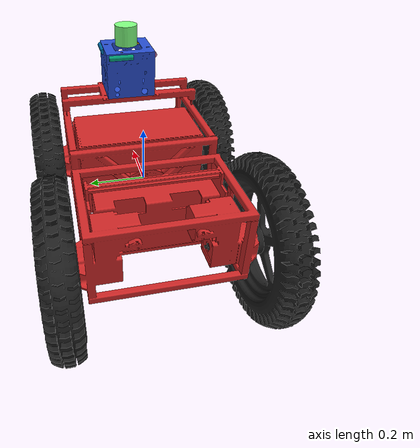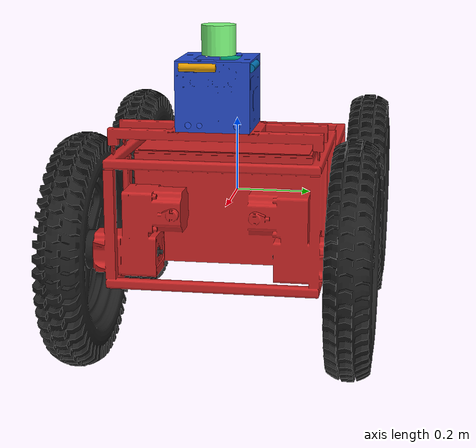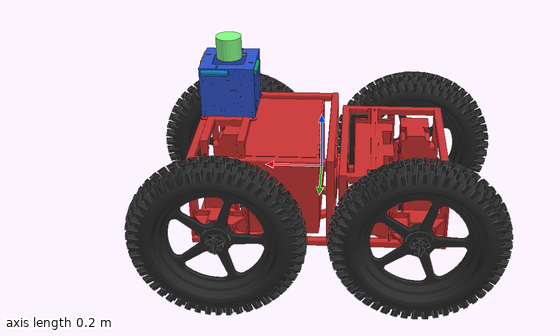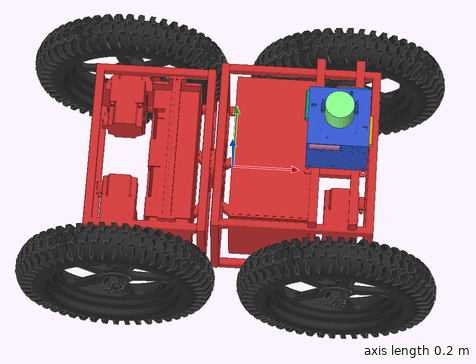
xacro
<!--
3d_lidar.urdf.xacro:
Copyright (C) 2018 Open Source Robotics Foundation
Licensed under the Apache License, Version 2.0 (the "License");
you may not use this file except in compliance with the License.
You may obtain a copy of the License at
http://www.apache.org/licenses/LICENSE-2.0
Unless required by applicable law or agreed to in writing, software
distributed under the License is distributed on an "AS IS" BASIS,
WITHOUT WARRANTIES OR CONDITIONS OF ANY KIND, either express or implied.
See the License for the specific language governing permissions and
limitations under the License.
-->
<?xml version="1.0"?>
<robot name="ground_robot_sim" xmlns:xacro="http://ros.org/wiki/xacro">

  <xacro:property name="mesh_path" value="package://ground_robot_sim/meshes" />
  <xacro:property name="wheel_length" value="0.1125" />
  <xacro:property name="wheel_radius" value="0.31" />
  <xacro:property name="M_PI" value="3.14159"/>
  <xacro:property name="joint_damping" value="10" />
  <xacro:property name="joint_friction" value="0.1" />
  <xacro:property name="wheel_ground_contact_stiffness" value="10000000.0" />
  <xacro:property name="wheel_ground_contact_damping" value="0.0001" />
  <xacro:property name="namespace" value="" />

  <xacro:include filename="$(find ground_robot_sim)/urdf/3d_lidar.urdf.xacro" />
  <xacro:include filename="$(find ground_robot_sim)/urdf/rgbd_camera.urdf.xacro" />

  <xacro:macro name="geometry_mesh" params="filename">
  	<geometry>
	  <mesh filename="${mesh_path}/${filename}" />
    </geometry>
  </xacro:macro>

  <xacro:macro name="default_collision" params="filename">
  	<collision>
      <origin xyz="0 0 0" rpy="0 0 0" />
      <xacro:geometry_mesh filename="${filename}" />
    </collision>
  </xacro:macro>

  <xacro:macro name="wheel_collision" params="filename">
  	<collision>
		<origin xyz="0 0 0" rpy="0 ${M_PI/2} 0" />
		<geometry>
      		<cylinder length="${wheel_length}" radius="${wheel_radius}" />
		</geometry>
  	</collision>
  </xacro:macro>

  <xacro:macro name="material_color" params="rgba">
    <material name="">
      <color rgba="${rgba}" />
    </material>
  </xacro:macro>

  <xacro:macro name="gazebo_material" params="ref color">
    <gazebo reference="${ref}">
      <material>Gazebo/${color}</material>
    </gazebo>
  </xacro:macro>

  <xacro:macro name="wheel_ground_contact_parameters" params="wheel_link">
  	<gazebo reference="${wheel_link}">
		<kp value="${wheel_ground_contact_stiffness}" />
		<kd value="${wheel_ground_contact_damping}" />
		<collision>
		  <surface>
		    <friction>
		      <ode>
		        <mu>1.0</mu>
		        <mu2>1.0</mu2>
		        <fdir1>0 0 1</fdir1>
		        <slip1>1e-3</slip1>
		        <slip2>0</slip2>
		       	<max_vel>10</max_vel>
		        <min_depth>0.1</min_depth>
		      </ode>
		    </friction>
		  </surface>
		</collision>
    </gazebo>
  </xacro:macro>

  <link name="base_link">
    <inertial>
      <origin
        xyz="9.37239544340711E-05 0.0335727432650143 0.0208381968306213"
        rpy="0 0 0" />
      <mass
        value="60.0100748375843" />
      <inertia
        ixx="4.4310240660959"
        ixy="0.00177949851092048"
        ixz="-0.00175257857601579"
        iyy="2.42782927668064"
        iyz="-0.39242059748848"
        izz="5.54496680440692" />
    </inertial>
    <visual>
      <origin xyz="0 0 0" rpy="0 0 -1.57" />
      <xacro:geometry_mesh filename="base_link.STL" />
    </visual>
    <xacro:default_collision filename="base_link.STL" />
  </link>

  <link
    name="Rear_Rocker_Link">
    <inertial>
      <origin
        xyz="-0.191018012185159 -0.00640313505536938 -1.26380909281965E-07"
        rpy="0 0 0" />
      <mass
        value="23.1125622247703" />
      <inertia
        ixx="0.848992292337387"
        ixy="0.00301841593778525"
        ixz="5.2178752701003E-06"
        iyy="1.03049493804274"
        iyz="1.21709858827846E-07"
        izz="0.436789924755462" />
    </inertial>
    <visual>
      <origin xyz="0 0 0" rpy="0 0 0" />
      <xacro:geometry_mesh filename="Rear_Rocker_Link.STL" />
    </visual>
    <xacro:default_collision filename="Rear_Rocker_Link.STL" />
  </link>
  <joint
    name="Center Pivot"
    type="continuous">
    <origin
      xyz="-0.047625 0 -0.0254"
      rpy="1.5708 6.123E-17 0" />
    <parent
      link="base_link" />
    <child
      link="Rear_Rocker_Link" />
    <axis
      xyz="-1 0 0" />
  </joint>

  <link name="sensor_payload_link">
    <inertial>
      <origin
        xyz="4.32900927266888E-05 0.072569130795944 -0.0921360274406024"
        rpy="0 0 0" />
      <mass
        value="0.41481449791151" />
      <inertia
        ixx="0.00208947621670912"
        ixy="-3.66162905680016E-07"
        ixz="-3.19229505004623E-07"
        iyy="0.00056264622462507"
        iyz="-2.41791699054797E-07"
        izz="0.00152683275984506" />
    </inertial>
    <visual>
      <origin xyz="0 0 0" rpy="0 0 0" />
      <xacro:geometry_mesh filename="sensor_payload_link.STL" />
    </visual>
    <xacro:default_collision filename="sensor_payload_link.STL" />
  </link>

  <joint name="sensor_payload_base_joint" type="fixed">
    <origin
      xyz="0.31054 -0.0903 0.23288"
      rpy="1.5708 6.123E-17 0" />
    <parent link="base_link" />
    <child link="sensor_payload_link" />
    <axis xyz="0 0 0" />
  </joint>

  <link name="left_rear_wheel_link">
    <inertial>
      <origin
        xyz="0.00712428256505299 -1.60381190311698E-05 3.5365049083913E-06"
        rpy="0 0 0" />
      <mass
        value="11.5397743446227" />
      <inertia
        ixx="0.127931752943703"
        ixy="6.41777184216616E-06"
        ixz="2.4027118765741E-06"
        iyy="0.0695644678223955"
        iyz="1.35438803038459E-09"
        izz="0.069564341275897" />
    </inertial>
    <visual>
      <origin xyz="0 0 0" rpy="0 0 0" />
      <xacro:geometry_mesh filename="left_rear_wheel_link.STL" />
    </visual>
    <xacro:wheel_collision filename="left_rear_wheel_link.STL" />
  </link>

  <joint name="left_rear_wheel" type="continuous">
    <origin
      xyz="-0.287 -0.058 -0.343"
      rpy="2.342 -1.571 2.356" />
    <parent link="Rear_Rocker_Link" />
    <child link="left_rear_wheel_link" />
    <axis xyz="-1 0 0" />
    <dynamics damping="${joint_damping}" friction="${joint_friction}"/>
  </joint>

  <link name="right_rear_wheel_link">
    <inertial>
      <origin
        xyz="0.0071242825654097 -1.60381190438819E-05 3.53650495498598E-06"
        rpy="0 0 0" />
      <mass
        value="11.5397743444433" />
      <inertia
        ixx="0.127931752943703"
        ixy="6.41777184772096E-06"
        ixz="2.40271185774561E-06"
        iyy="0.0695644678228964"
        iyz="1.35438804973759E-09"
        izz="0.0695643412763979" />
    </inertial>
    <visual>
      <origin xyz="0 0 0" rpy="0 0 0" />
      <xacro:geometry_mesh filename="right_rear_wheel_link.STL" />
    </visual>
    <xacro:wheel_collision filename="right_rear_wheel_link.STL" />
  </link>

  <joint name="right_rear_wheel" type="continuous">
    <origin
      xyz="-0.287 -0.058 0.343"
      rpy="2.342 1.571 -2.356" />
    <parent link="Rear_Rocker_Link" />
    <child link="right_rear_wheel_link" />
    <axis xyz="1 0 0" />
    <dynamics damping="${joint_damping}" friction="${joint_friction}"/>
  </joint>

  <link name="left_front_wheel_link">
    <inertial>
      <origin
        xyz="0.00712428256528591 -1.60381191288139E-05 3.53650501356412E-06"
        rpy="0 0 0" />
      <mass
        value="11.539774344498" />
      <inertia
        ixx="0.127931752943703"
        ixy="6.41777188154299E-06"
        ixz="2.40271183447247E-06"
        iyy="0.0695644678227324"
        iyz="1.35438809933984E-09"
        izz="0.069564341276234" />
    </inertial>
    <visual>
      <origin xyz="0 0 0" rpy="0 0 0" />
      <xacro:geometry_mesh filename="left_front_wheel_link.STL" />
    </visual>
    <xacro:wheel_collision filename="left_front_wheel_link.STL" />
  </link>

  <joint name="left_front_wheel" type="continuous">
    <origin
      xyz="0.33421 0.343 -0.091538"
      rpy="-0.013747 0 -1.57" />
    <parent link="base_link" />
    <child link="left_front_wheel_link" />
    <axis xyz="-1 0 0" />
    <dynamics damping="${joint_damping}" friction="${joint_friction}"/>
  </joint>

  <link name="right_front_wheel_link">
    <inertial>
      <origin
        xyz="0.00712428256521414 -1.60381189326375E-05 3.5365048384195E-06"
        rpy="0 0 0" />
      <mass
        value="11.539774344544" />
      <inertia
        ixx="0.127931752943703"
        ixy="6.41777180284833E-06"
        ixz="2.40271190443607E-06"
        iyy="0.0695644678226199"
        iyz="1.35438796820559E-09"
        izz="0.0695643412761212" />
    </inertial>
    <visual>
      <origin xyz="0 0 0" rpy="0 0 0" />
      <xacro:geometry_mesh filename="right_front_wheel_link.STL" />
    </visual>
    <xacro:wheel_collision filename="right_front_wheel_link.STL" />
  </link>

  <joint name="right_front_wheel" type="continuous">
    <origin
      xyz="0.33421 -0.343 -0.091538"
      rpy="-0.013747 0 1.5708" />
    <parent link="base_link" />
    <child link="right_front_wheel_link" />
    <axis xyz="1 0 0" />
    <dynamics damping="${joint_damping}" friction="${joint_friction}"/>
  </joint>

  <xacro:wheel_ground_contact_parameters wheel_link="left_rear_wheel_link"/>
  <xacro:wheel_ground_contact_parameters wheel_link="right_rear_wheel_link"/>
  <xacro:wheel_ground_contact_parameters wheel_link="left_front_wheel_link"/>
  <xacro:wheel_ground_contact_parameters wheel_link="right_front_wheel_link"/>

  <xacro:gazebo_material ref="base_link"        color="Red" />
  <xacro:gazebo_material ref="Rear_Rocker_Link" color="Red" />
  <xacro:gazebo_material ref="left_front_wheel_link" color="Black" />
  <xacro:gazebo_material ref="left_rear_wheel_link"  color="Black" />
  <xacro:gazebo_material ref="right_front_wheel_link" color="Black" />
  <xacro:gazebo_material ref="right_rear_wheel_link"  color="Black" />
  <xacro:gazebo_material ref="sensor_payload_link" color="Blue"/>

  <xacro:macro name="define_transmission" params="name joint actuator">
    <transmission name="${name}">
      <type>transmission_interface/SimpleTransmission</type>
      <joint name="${joint}">
        <hardwareInterface>hardware_interface/VelocityJointInterface</hardwareInterface>
      </joint>
      <actuator name="${actuator}">
        <mechanicalReduction>1</mechanicalReduction>
      </actuator>
    </transmission>
  </xacro:macro>

  <xacro:define_transmission name="left_front_wheel_trans" joint="left_front_wheel" actuator="left_front_wheel_motor" />
  <xacro:define_transmission name="right_front_wheel_trans" joint="right_front_wheel" actuator="right_front_wheel_motor" />
  <xacro:define_transmission name="left_rear_wheel_trans" joint="left_rear_wheel" actuator="left_rear_wheel_motor" />
  <xacro:define_transmission name="right_rear_wheel_trans" joint="right_rear_wheel" actuator="right_rear_wheel_motor" />

  <gazebo>
    <plugin name="gazebo_ros_control" filename="libgazebo_ros_control.so">
    </plugin>
  </gazebo>

  <gazebo>
    <plugin name="imu_controller" filename="libhector_gazebo_ros_imu.so">
      <updateRate>50.0</updateRate>
      <!--TODO: The frame id and body name need the namespace-->
      <frameId>base_link</frameId>
      <bodyName>base_link</bodyName>
      <topicName>/X1/imu/data</topicName>
      <accelDrift>0.005 0.005 0.005</accelDrift>
      <accelGaussianNoise>0.005 0.005 0.005</accelGaussianNoise>
      <rateDrift>0.005 0.005 0.005 </rateDrift>
      <rateGaussianNoise>0.005 0.005 0.005 </rateGaussianNoise>
      <headingDrift>0.005</headingDrift>
      <headingGaussianNoise>0.005</headingGaussianNoise>
    </plugin>
  </gazebo>

  <xacro:macro name="velodyne_long_range_lidar_and_mount">
    <velodyne_lidar
      name="front_laser"
      topic="/X1/points"
      max_range="200"
      update_rate="10"
    />

    <joint name="front_laser_mount_joint" type="fixed">
      <origin xyz="4.32900927266888E-05 0.215 -0.0921360274406024" rpy="-${M_PI/2} 0 0" />
      <parent link="sensor_payload_link" />
      <child link="front_laser" />
    </joint>
  </xacro:macro>

  <xacro:velodyne_long_range_lidar_and_mount/>

  <xacro:macro name="front_depth_camera_and_mount">
    <rgbd_camera
      name="rs_front"
      roll="${M_PI/2}"
    />

    <joint name="rs_front_mount_joint" type="fixed">
      <origin xyz="0.09 0.157 -0.055" rpy="-${M_PI/2} 0 0" />
      <parent link="sensor_payload_link" />
      <child link="rs_front_link" />
    </joint>
  </xacro:macro>

  <xacro:front_depth_camera_and_mount/>

  <xacro:macro name="rear_depth_camera_and_mount">
    <rgbd_camera
      name="rs_back"
      roll="${M_PI/2}"
    />

    <joint name="rs_back_mount_joint" type="fixed">
      <origin xyz="-0.09 0.157 -0.1275" rpy="-${M_PI/2} ${M_PI} 0" />
      <parent link="sensor_payload_link" />
      <child link="rs_back_link" />
    </joint>
  </xacro:macro>

  <xacro:rear_depth_camera_and_mount/>

  <xacro:macro name="left_depth_camera_and_mount">
    <rgbd_camera
      name="rs_left"
      roll="${M_PI/2}"
    />

    <joint name="rs_left_mount_joint" type="fixed">
      <origin xyz="0.038 0.157 -0.182" rpy="-${M_PI/2} ${M_PI/2} 0" />
      <parent link="sensor_payload_link" />
      <child link="rs_left_link" />
    </joint>
  </xacro:macro>

  <xacro:left_depth_camera_and_mount/>

  <xacro:macro name="right_depth_camera_and_mount">
    <rgbd_camera
      name="rs_right"
      roll="${M_PI/2}"
      yaw="${M_PI}"
    />

    <joint name="rs_right_mount_joint" type="fixed">
      <origin xyz="-0.038 0.157 0" rpy="-${M_PI/2} ${1.5*M_PI} 0" />
      <parent link="sensor_payload_link" />
      <child link="rs_right_link" />
    </joint>
  </xacro:macro>

  <xacro:right_depth_camera_and_mount/>

</robot>

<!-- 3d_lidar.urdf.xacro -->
<robot xmlns:xacro="http://ros.org/wiki/xacro">
  <xacro:macro name="velodyne_lidar" params="name
                                             update_rate:=10
                                             vertical_lasers:=16
                                             samples:=1800
                                             resolution:=0.1
                                             min_angle:=${-pi}
                                             max_angle:=${pi}
                                             min_vertical_angle:=${-pi/6}  max_vertical_angle:=${pi/6}
                                             min_range:=0.05
                                             max_range:=100
                                             noise_stddev:=0.01
                                             robot_namespace:=/
                                             topic:=points">
    <link name="${name}">
      <visual name="${name}_visual">>
        <geometry>
          <cylinder radius="0.04267" length="0.07357" />
        </geometry>
        <material name="${name}_visual_material">
          <color rgba="0.5 1.0 0.5 1.0" />
        </material>
      </visual>
    </link>
    <gazebo reference="${name}">
      <sensor type="gpu_ray" name="${name}_sensor">
        <update_rate>${update_rate}</update_rate>
        <ray>
          <scan>
            <horizontal>
              <samples>${samples/resolution}</samples>
              <resolution>${resolution}</resolution>
              <min_angle>${min_angle}</min_angle>
              <max_angle>${max_angle}</max_angle>
            </horizontal>
            <vertical>
              <samples>${vertical_lasers}</samples>
              <resolution>2</resolution>
              <min_angle>${min_vertical_angle}</min_angle>
              <max_angle>${max_vertical_angle}</max_angle>
            </vertical>
          </scan>
          <range>
            <min>${min_range}</min>
            <max>${max_range}</max>
          </range>
          <noise>
            <type>gaussian</type>
            <mean>0.0</mean>
            <stddev>${noise_stddev}</stddev>
          </noise>
        </ray>
        <plugin name="${name}_plugin" filename="libgazebo_ros_velodyne_gpu_laser.so">
          <topicName>${topic}</topicName>
          <frameName>${name}</frameName>
          <robotNamespace>${robot_namespace}</robotNamespace>
          <min_range>${min_range}</min_range>
          <max_range>${max_range}</max_range>
          <gaussianNoise>0.0</gaussianNoise>
        </plugin>
      </sensor>
    </gazebo>
  </xacro:macro>
</robot>

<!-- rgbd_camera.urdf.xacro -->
<robot xmlns:xacro="http://ros.org/wiki/xacro" name="rgbd_camera">
  <xacro:macro name="rgbd_camera"
               params="name:=camera
                       robot_namespace:=/
                       width:=320
                       height:=240
                       update_rate:=30.0
                       min_distance:=0.05
                       max_distance:=25.0
                       pointCloudCutoff:=0.6
                       pointCloudCutoffMax:=8
                       roll:=0
                       pitch:=0
                       yaw:=0">

    <link name="${name}_link">
      <visual>
        <origin xyz="0 0 0" rpy="${roll} ${pitch} ${yaw}"/>
        <geometry>
          <cylinder radius="0.01" length="0.09"/>
        </geometry>
      </visual>
    </link>

    <joint name="${name}_optical_joint" type="fixed">
      <origin xyz="0 0 0" rpy="-${M_PI/2} 0 -${M_PI/2}"/>
      <parent link="${name}_link"/>
      <child link="${name}_frame_optical"/>
    </joint>

    <link name="${name}_frame_optical"/>

    <gazebo reference="${name}_link">
      <sensor type="depth" name="${name}">
        <always_on>true</always_on>
        <update_rate>${update_rate}</update_rate>
        <camera>
          <horizontal_fov>${60.0*M_PI/180.0}</horizontal_fov>
          <image>
            <format>R8G8B8</format>
            <width>${width}</width>
            <height>${height}</height>
          </image>
          <clip>
            <near>${min_distance}</near>
            <far>${max_distance}</far>
          </clip>
        </camera>
        <plugin name="rgbd_${name}_controller" filename="libgazebo_ros_openni_kinect.so">
          <cameraName>${name}</cameraName>
          <alwaysOn>true</alwaysOn>
          <updateRate>${update_rate}</updateRate>
          <imageTopicName>rgb/image_raw</imageTopicName>
          <depthImageTopicName>depth/image_raw</depthImageTopicName>
          <pointCloudTopicName>depth/points</pointCloudTopicName>
          <cameraInfoTopicName>rgb/camera_info</cameraInfoTopicName>
          <depthImageCameraInfoTopicName>depth/camera_info</depthImageCameraInfoTopicName>
          <frameName>${name}_frame_optical</frameName>
          <baseline>0.1</baseline>
          <distortion_k1>0.0</distortion_k1>
          <distortion_k2>0.0</distortion_k2>
          <distortion_k3>0.0</distortion_k3>
          <distortion_t1>0.0</distortion_t1>
          <distortion_t2>0.0</distortion_t2>
          <pointCloudCutoff>${pointCloudCutoff}</pointCloudCutoff>
          <pointCloudCutoffMax>${pointCloudCutoffMax}</pointCloudCutoffMax>
          <robotNamespace>${robot_namespace}</robotNamespace>
        </plugin>
      </sensor>
    </gazebo>
  </xacro:macro>
</robot>
